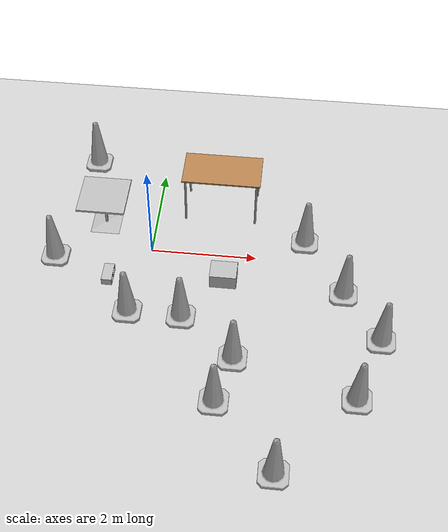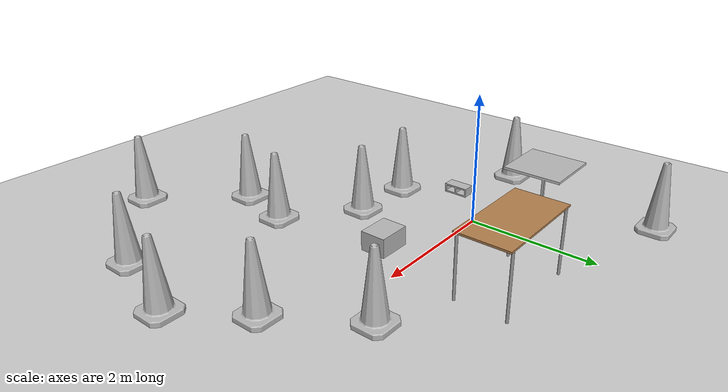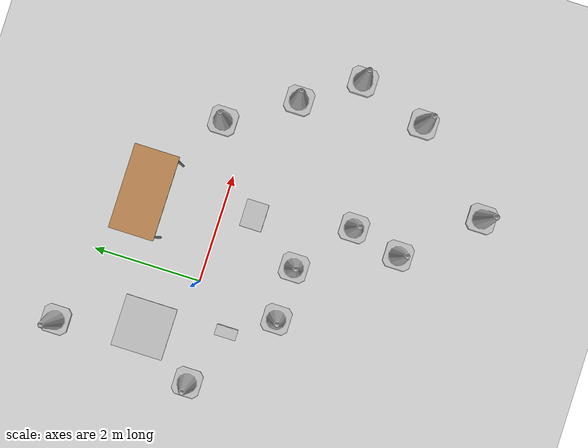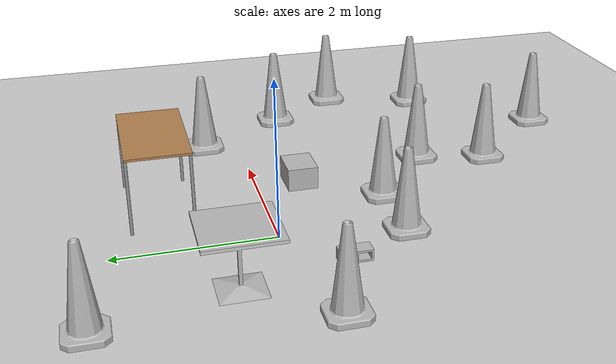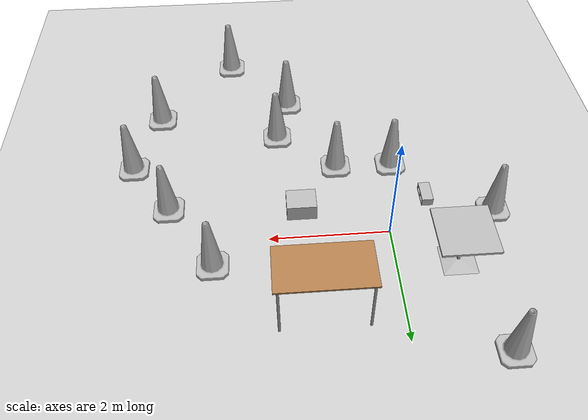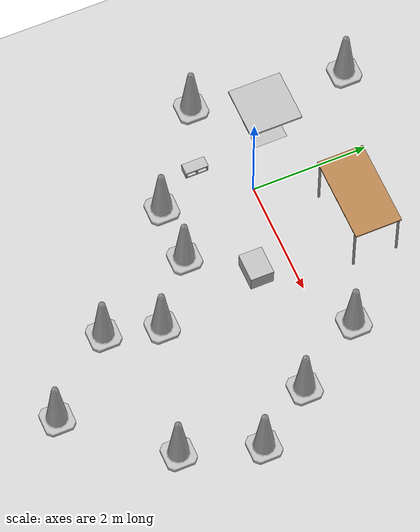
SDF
<sdf version="1.7">
 <world name="default">
  <light name="sun" type="directional">
   <pose>0 0 10 0 -0 0</pose>
   <diffuse>0.8 0.8 0.8 1</diffuse>
   <specular>0.2 0.2 0.2 1</specular>
   <attenuation>
    <range>1000</range>
    <constant>0.9</constant>
    <linear>0.01</linear>
    <quadratic>0.001</quadratic>
   </attenuation>
   <direction>-0.5 0.1 -0.9</direction>
   <spot><inner_angle>0</inner_angle><outer_angle>0</outer_angle><falloff>0</falloff></spot>
  </light>
  <model name="ground_plane">
   <static>1</static>
   <link name="link">
    <collision name="collision">
     <geometry><plane><normal>0 0 1</normal><size>100 100</size></plane></geometry>
     <surface>
      <contact><collide_bitmask>65535</collide_bitmask></contact>
      <friction><ode><mu>100</mu><mu2>50</mu2></ode></friction>
     </surface>
    </collision>
    <visual name="visual">
     <cast_shadows>0</cast_shadows>
     <geometry><plane><normal>0 0 1</normal><size>100 100</size></plane></geometry>
     <material>
      <script><uri>file://media/materials/scripts/gazebo.material</uri><name>Gazebo/Grey</name></script>
     </material>
    </visual>
   </link>
  </model>
  <gravity>0 0 -9.8</gravity>
  <magnetic_field>6e-06 2.3e-05 -4.2e-05</magnetic_field>
  <atmosphere type="adiabatic"/>
  <physics type="ode">
   <max_step_size>0.001</max_step_size>
   <real_time_factor>1</real_time_factor>
   <real_time_update_rate>1000</real_time_update_rate>
  </physics>
  <scene><ambient>0.4 0.4 0.4 1</ambient><background>0.7 0.7 0.7 1</background><shadows>1</shadows></scene>
  <spherical_coordinates>
   <surface_model>EARTH_WGS84</surface_model>
   <latitude_deg>0</latitude_deg>
   <longitude_deg>0</longitude_deg>
   <elevation>0</elevation>
   <heading_deg>0</heading_deg>
  </spherical_coordinates>
  <model name="table">
   <static>1</static>
   <link name="link">
    <collision name="surface">
     <pose>0 0 1 0 -0 0</pose>
     <geometry><box><size>1.5 0.8 0.03</size></box></geometry>
     <surface><friction><ode><mu>0.6</mu><mu2>0.6</mu2></ode></friction></surface>
    </collision>
    <visual name="visual1">
     <pose>0 0 1 0 -0 0</pose>
     <geometry><box><size>1.5 0.8 0.03</size></box></geometry>
     <material>
      <script><uri>file://media/materials/scripts/gazebo.material</uri><name>Gazebo/Wood</name></script>
     </material>
    </visual>
    <collision name="front_left_leg">
     <pose>0.68 0.38 0.5 0 -0 0</pose>
     <geometry><cylinder><radius>0.02</radius><length>1</length></cylinder></geometry>
    </collision>
    <visual name="front_left_leg">
     <pose>0.68 0.38 0.5 0 -0 0</pose>
     <geometry><cylinder><radius>0.02</radius><length>1</length></cylinder></geometry>
     <material>
      <script><uri>file://media/materials/scripts/gazebo.material</uri><name>Gazebo/Grey</name></script>
     </material>
    </visual>
    <collision name="front_right_leg">
     <pose>0.68 -0.38 0.5 0 -0 0</pose>
     <geometry><cylinder><radius>0.02</radius><length>1</length></cylinder></geometry>
    </collision>
    <visual name="front_right_leg">
     <pose>0.68 -0.38 0.5 0 -0 0</pose>
     <geometry><cylinder><radius>0.02</radius><length>1</length></cylinder></geometry>
     <material>
      <script><uri>file://media/materials/scripts/gazebo.material</uri><name>Gazebo/Grey</name></script>
     </material>
    </visual>
    <collision name="back_right_leg">
     <pose>-0.68 -0.38 0.5 0 -0 0</pose>
     <geometry><cylinder><radius>0.02</radius><length>1</length></cylinder></geometry>
    </collision>
    <visual name="back_right_leg">
     <pose>-0.68 -0.38 0.5 0 -0 0</pose>
     <geometry><cylinder><radius>0.02</radius><length>1</length></cylinder></geometry>
     <material>
      <script><uri>file://media/materials/scripts/gazebo.material</uri><name>Gazebo/Grey</name></script>
     </material>
    </visual>
    <collision name="back_left_leg">
     <pose>-0.68 0.38 0.5 0 -0 0</pose>
     <geometry><cylinder><radius>0.02</radius><length>1</length></cylinder></geometry>
    </collision>
    <visual name="back_left_leg">
     <pose>-0.68 0.38 0.5 0 -0 0</pose>
     <geometry><cylinder><radius>0.02</radius><length>1</length></cylinder></geometry>
     <material>
      <script><uri>file://media/materials/scripts/gazebo.material</uri><name>Gazebo/Grey</name></script>
     </material>
    </visual>
   </link>
   <pose>1.22398 1.30346 0 0 -0 0</pose>
  </model>
  <model name="cardboard_box">
   <pose>1.4318 -0.580408 0.149 0 -0 0</pose>
   <link name="link">
    <inertial>
     <mass>2</mass>
     <inertia>
      <ixx>0.0416667</ixx>
      <ixy>0</ixy>
      <ixz>0</ixz>
      <iyy>0.0566667</iyy>
      <iyz>0</iyz>
      <izz>0.0683333</izz>
     </inertia>
    </inertial>
    <collision name="collision">
     <geometry><box><size>0.5 0.4 0.3</size></box></geometry>
     <surface>
      <friction><ode><mu>1</mu><mu2>1</mu2></ode></friction>
      <contact><ode><kp>1e+07</kp><kd>1</kd><min_depth>0.001</min_depth><max_vel>0.1</max_vel></ode></contact>
     </surface>
    </collision>
    <visual name="visual">
     <pose>0 0 -0.15 0 -0 0</pose>
     <geometry>
      <mesh><uri>model://cardboard_box/meshes/cardboard_box.dae</uri><scale>1.25932 1.00745 0.755591</scale></mesh>
     </geometry>
    </visual>
   </link>
  </model>
  <model name="Construction Cone">
   <link name="link">
    <collision name="collision">
     <geometry>
      <mesh><scale>10 10 10</scale><uri>model://construction_cone/meshes/construction_cone.dae</uri></mesh>
     </geometry>
    </collision>
    <visual name="visual">
     <geometry>
      <mesh><scale>10 10 10</scale><uri>model://construction_cone/meshes/construction_cone.dae</uri></mesh>
     </geometry>
    </visual>
    <inertial>
     <inertia><ixx>1</ixx><ixy>0</ixy><ixz>0</ixz><iyy>1</iyy><iyz>0</iyz><izz>1</izz></inertia>
     <mass>1</mass>
    </inertial>
   </link>
   <pose>0.753892 -1.54311 -1e-05 0 -0 0</pose>
  </model>
  <model name="Construction Cone_0">
   <link name="link">
    <collision name="collision">
     <geometry>
      <mesh><scale>10 10 10</scale><uri>model://construction_cone/meshes/construction_cone.dae</uri></mesh>
     </geometry>
    </collision>
    <visual name="visual">
     <geometry>
      <mesh><scale>10 10 10</scale><uri>model://construction_cone/meshes/construction_cone.dae</uri></mesh>
     </geometry>
    </visual>
    <inertial>
     <inertia><ixx>1</ixx><ixy>0</ixy><ixz>0</ixz><iyy>1</iyy><iyz>0</iyz><izz>1</izz></inertia>
     <mass>1</mass>
    </inertial>
   </link>
   <pose>2.90179 0.480527 -0 0 -1e-06 0</pose>
  </model>
  <model name="cafe_table">
   <static>1</static>
   <link name="link">
    <collision name="surface">
     <pose>0 0 0.755 0 -0 0</pose>
     <geometry><box><size>0.913 0.913 0.04</size></box></geometry>
    </collision>
    <collision name="column">
     <pose>0 0 0.37 0 -0 0</pose>
     <geometry><box><size>0.042 0.042 0.74</size></box></geometry>
    </collision>
    <collision name="base">
     <pose>0 0 0.02 0 -0 0</pose>
     <geometry><box><size>0.56 0.56 0.04</size></box></geometry>
    </collision>
    <visual name="visual">
     <geometry><mesh><uri>model://cafe_table/meshes/cafe_table.dae</uri></mesh></geometry>
    </visual>
   </link>
   <pose>-0.988229 0.633403 0 0 -0 0</pose>
  </model>
  <model name="cinder_block_2">
   <link name="link">
    <inertial>
     <pose>0 0 0.071438 0 -0 0</pose>
     <mass>5</mass>
     <inertia>
      <ixx>0.06908</ixx>
      <ixy>0</ixy>
      <iyy>0.028705</iyy>
      <ixz>0</ixz>
      <iyz>0</iyz>
      <izz>0.073708</izz>
     </inertia>
    </inertial>
    <visual name="visual">
     <geometry><mesh><uri>model://cinder_block_2/meshes/cinder_block.dae</uri></mesh></geometry>
    </visual>
    <collision name="top">
     <pose>0 0 0.130175 0 -0 0</pose>
     <geometry><box><size>0.19368 0.396875 0.0254</size></box></geometry>
     <surface>
      <contact><ode><max_vel>0.1</max_vel><min_depth>0.001</min_depth></ode></contact>
      <friction><ode><mu>1</mu><mu2>1</mu2></ode></friction>
     </surface>
    </collision>
    <collision name="bottom">
     <pose>0 0 0.0127 0 -0 0</pose>
     <geometry><box><size>0.19368 0.396875 0.0254</size></box></geometry>
     <surface>
      <contact><ode><max_vel>0.1</max_vel><min_depth>0.001</min_depth></ode></contact>
      <friction><ode><mu>1</mu><mu2>1</mu2></ode></friction>
     </surface>
    </collision>
    <collision name="left">
     <pose>0 -0.185738 0.071438 0 -0 0</pose>
     <geometry><box><size>0.19368 0.0254 0.092075</size></box></geometry>
     <surface>
      <contact><ode><max_vel>0.1</max_vel><min_depth>0.001</min_depth></ode></contact>
      <friction><ode><mu>1</mu><mu2>1</mu2></ode></friction>
     </surface>
    </collision>
    <collision name="right">
     <pose>0 0.185738 0.071438 0 -0 0</pose>
     <geometry><box><size>0.19368 0.0254 0.092075</size></box></geometry>
     <surface>
      <contact><ode><max_vel>0.1</max_vel><min_depth>0.001</min_depth></ode></contact>
      <friction><ode><mu>1</mu><mu2>1</mu2></ode></friction>
     </surface>
    </collision>
    <collision name="middle">
     <pose>0 0 0.071438 0 -0 0</pose>
     <geometry><box><size>0.19368 0.0254 0.092075</size></box></geometry>
     <surface>
      <contact><ode><max_vel>0.1</max_vel><min_depth>0.001</min_depth></ode></contact>
      <friction><ode><mu>1</mu><mu2>1</mu2></ode></friction>
     </surface>
    </collision>
   </link>
   <pose>-0.721381 -0.730569 -1e-05 0 -0 0</pose>
  </model>
  <model name="Construction Cone_clone">
   <link name="link">
    <collision name="collision">
     <geometry>
      <mesh><scale>10 10 10</scale><uri>model://construction_cone/meshes/construction_cone.dae</uri></mesh>
     </geometry>
    </collision>
    <visual name="visual">
     <geometry>
      <mesh><scale>10 10 10</scale><uri>model://construction_cone/meshes/construction_cone.dae</uri></mesh>
     </geometry>
    </visual>
    <inertial>
     <inertia><ixx>1</ixx><ixy>0</ixy><ixz>0</ixz><iyy>1</iyy><iyz>0</iyz><izz>1</izz></inertia>
     <mass>1</mass>
    </inertial>
   </link>
   <pose>-0.231343 -1.52285 -0 0 -1e-06 0</pose>
  </model>
  <model name="Construction Cone_clone_0">
   <link name="link">
    <collision name="collision">
     <geometry>
      <mesh><scale>10 10 10</scale><uri>model://construction_cone/meshes/construction_cone.dae</uri></mesh>
     </geometry>
    </collision>
    <visual name="visual">
     <geometry>
      <mesh><scale>10 10 10</scale><uri>model://construction_cone/meshes/construction_cone.dae</uri></mesh>
     </geometry>
    </visual>
    <inertial>
     <inertia><ixx>1</ixx><ixy>0</ixy><ixz>0</ixz><iyy>1</iyy><iyz>0</iyz><izz>1</izz></inertia>
     <mass>1</mass>
    </inertial>
   </link>
   <pose>-1.80158 -0.335446 -0 0 -1e-06 0</pose>
  </model>
  <model name="Construction Cone_clone_1">
   <link name="link">
    <collision name="collision">
     <geometry>
      <mesh><scale>10 10 10</scale><uri>model://construction_cone/meshes/construction_cone.dae</uri></mesh>
     </geometry>
    </collision>
    <visual name="visual">
     <geometry>
      <mesh><scale>10 10 10</scale><uri>model://construction_cone/meshes/construction_cone.dae</uri></mesh>
     </geometry>
    </visual>
    <inertial>
     <inertia><ixx>1</ixx><ixy>0</ixy><ixz>0</ixz><iyy>1</iyy><iyz>0</iyz><izz>1</izz></inertia>
     <mass>1</mass>
    </inertial>
   </link>
   <pose>-1.4368 2.27507 -0 0 -1e-06 0</pose>
  </model>
  <model name="Construction Cone_clone_2">
   <link name="link">
    <collision name="collision">
     <geometry>
      <mesh><scale>10 10 10</scale><uri>model://construction_cone/meshes/construction_cone.dae</uri></mesh>
     </geometry>
    </collision>
    <visual name="visual">
     <geometry>
      <mesh><scale>10 10 10</scale><uri>model://construction_cone/meshes/construction_cone.dae</uri></mesh>
     </geometry>
    </visual>
    <inertial>
     <inertia><ixx>1</ixx><ixy>0</ixy><ixz>0</ixz><iyy>1</iyy><iyz>0</iyz><izz>1</izz></inertia>
     <mass>1</mass>
    </inertial>
   </link>
   <pose>1.76508 -2.36331 -0 0 -1e-06 0</pose>
  </model>
  <model name="Construction Cone_clone_3">
   <link name="link">
    <collision name="collision">
     <geometry>
      <mesh><scale>10 10 10</scale><uri>model://construction_cone/meshes/construction_cone.dae</uri></mesh>
     </geometry>
    </collision>
    <visual name="visual">
     <geometry>
      <mesh><scale>10 10 10</scale><uri>model://construction_cone/meshes/construction_cone.dae</uri></mesh>
     </geometry>
    </visual>
    <inertial>
     <inertia><ixx>1</ixx><ixy>0</ixy><ixz>0</ixz><iyy>1</iyy><iyz>0</iyz><izz>1</izz></inertia>
     <mass>1</mass>
    </inertial>
   </link>
   <pose>3.66614 -0.72171 -0 0 -0 0</pose>
  </model>
  <model name="Construction Cone_clone_4">
   <link name="link">
    <collision name="collision">
     <geometry>
      <mesh><scale>10 10 10</scale><uri>model://construction_cone/meshes/construction_cone.dae</uri></mesh>
     </geometry>
    </collision>
    <visual name="visual">
     <geometry>
      <mesh><scale>10 10 10</scale><uri>model://construction_cone/meshes/construction_cone.dae</uri></mesh>
     </geometry>
    </visual>
    <inertial>
     <inertia><ixx>1</ixx><ixy>0</ixy><ixz>0</ixz><iyy>1</iyy><iyz>0</iyz><izz>1</izz></inertia>
     <mass>1</mass>
    </inertial>
   </link>
   <pose>1.53006 -3.27645 -0 0 -1e-06 0</pose>
  </model>
  <model name="Construction Cone_clone_5">
   <link name="link">
    <collision name="collision">
     <geometry>
      <mesh><scale>10 10 10</scale><uri>model://construction_cone/meshes/construction_cone.dae</uri></mesh>
     </geometry>
    </collision>
    <visual name="visual">
     <geometry>
      <mesh><scale>10 10 10</scale><uri>model://construction_cone/meshes/construction_cone.dae</uri></mesh>
     </geometry>
    </visual>
    <inertial>
     <inertia><ixx>1</ixx><ixy>0</ixy><ixz>0</ixz><iyy>1</iyy><iyz>0</iyz><izz>1</izz></inertia>
     <mass>1</mass>
    </inertial>
   </link>
   <pose>4.34599 -1.71901 -1e-06 1e-06 -2e-06 -0</pose>
  </model>
  <model name="Construction Cone_clone_6">
   <link name="link">
    <collision name="collision">
     <geometry>
      <mesh><scale>10 10 10</scale><uri>model://construction_cone/meshes/construction_cone.dae</uri></mesh>
     </geometry>
    </collision>
    <visual name="visual">
     <geometry>
      <mesh><scale>10 10 10</scale><uri>model://construction_cone/meshes/construction_cone.dae</uri></mesh>
     </geometry>
    </visual>
    <inertial>
     <inertia><ixx>1</ixx><ixy>0</ixy><ixz>0</ixz><iyy>1</iyy><iyz>0</iyz><izz>1</izz></inertia>
     <mass>1</mass>
    </inertial>
   </link>
   <pose>3.93241 -2.99744 -0 0 -1e-06 0</pose>
  </model>
  <model name="Construction Cone_clone_7">
   <link name="link">
    <collision name="collision">
     <geometry>
      <mesh><scale>10 10 10</scale><uri>model://construction_cone/meshes/construction_cone.dae</uri></mesh>
     </geometry>
    </collision>
    <visual name="visual">
     <geometry>
      <mesh><scale>10 10 10</scale><uri>model://construction_cone/meshes/construction_cone.dae</uri></mesh>
     </geometry>
    </visual>
    <inertial>
     <inertia><ixx>1</ixx><ixy>0</ixy><ixz>0</ixz><iyy>1</iyy><iyz>0</iyz><izz>1</izz></inertia>
     <mass>1</mass>
    </inertial>
   </link>
   <pose>2.61903 -4.51607 -0 1e-06 -0 0</pose>
  </model>
 </world>
</sdf>
